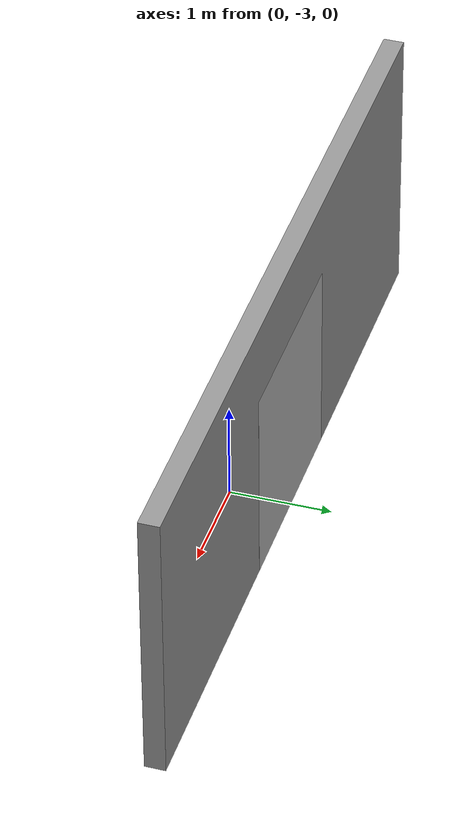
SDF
<?xml version="1.0" ?>
<sdf version="1.6">
  <world name="default">
    <scene>
      <ambient>0.4 0.4 0.4 1</ambient>
      <background>0.25 0.25 0.25 1</background>
      <shadows>false</shadows>
    </scene>
    <light type="directional" name="some_light">
      <diffuse>0.7 0.7 0.7 0</diffuse>
      <specular>1 1 1 0</specular>
      <direction>-1 -1 -1</direction>
    </light>
    <include>
      <uri>model://grey_wall</uri>
    </include>
    <include>
      <uri>model://poster</uri>
    </include>
  </world>
</sdf>

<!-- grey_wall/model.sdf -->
<sdf version="1.5">
  <model name="grey_wall">
    <static>true</static>
    <link name="link">
      <pose>0 -2.5 1.4 0 0 0</pose>
      <collision name="collision">
        <geometry>
          <box>
            <size>7.5 0.2 2.8</size>
          </box>
        </geometry>
      </collision>
      <visual name="visual">
        <cast_shadows>false</cast_shadows>
        <geometry>
          <box>
            <size>7.5 0.2 2.8</size>
          </box>
        </geometry>
        <material>
          <script>
            <uri>model://grey_wall/materials/scripts</uri>
            <uri>model://grey_wall/materials/textures</uri>
            <name>vrc/grey_wall</name>
          </script>
        </material>
      </visual>
    </link>
  </model>
</sdf>

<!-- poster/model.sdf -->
<sdf version="1.4">
  <model name="poster">
    <pose>0 -2.4 1 0 0 0</pose>
    <static>true</static>
    <link name="link">
      <inertial>
        <mass>1.0</mass>
        <inertia> <!-- inertias are tricky to compute -->
          <!-- http://gazebosim.org/tutorials?tut=inertia&cat=build_robot -->
          <ixx>0.083</ixx>       <!-- for a box: ixx = 0.083 * mass * (y*y + z*z) -->
          <ixy>0.0</ixy>         <!-- for a box: ixy = 0 -->
          <ixz>0.0</ixz>         <!-- for a box: ixz = 0 -->
          <iyy>0.083</iyy>       <!-- for a box: iyy = 0.083 * mass * (x*x + z*z) -->
          <iyz>0.0</iyz>         <!-- for a box: iyz = 0 -->
          <izz>0.083</izz>       <!-- for a box: izz = 0.083 * mass * (x*x + y*y) -->
        </inertia>
      </inertial>
      <collision name="collision">
        <geometry>
          <box>
            <size>1 .001 1</size>
          </box>
        </geometry>
      </collision>
      <visual name="visual">
        <geometry>
          <box>
            <size>2 .001 2</size>
          </box>
        </geometry>
        <material>
          <script>
            <uri>model://poster/materials/scripts</uri>
            <uri>model://poster/materials/textures</uri>
            <name>vrc/poster</name>
          </script>
        </material>
      </visual>
    </link>
  </model>
</sdf>
